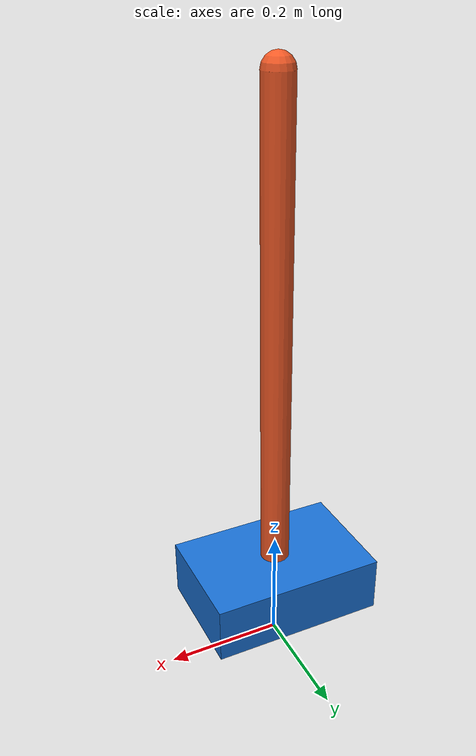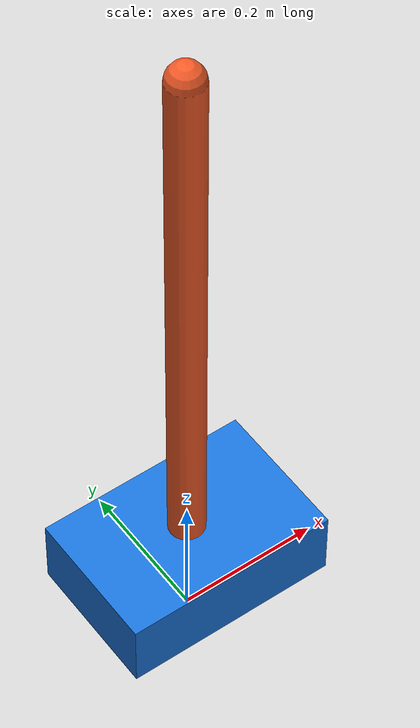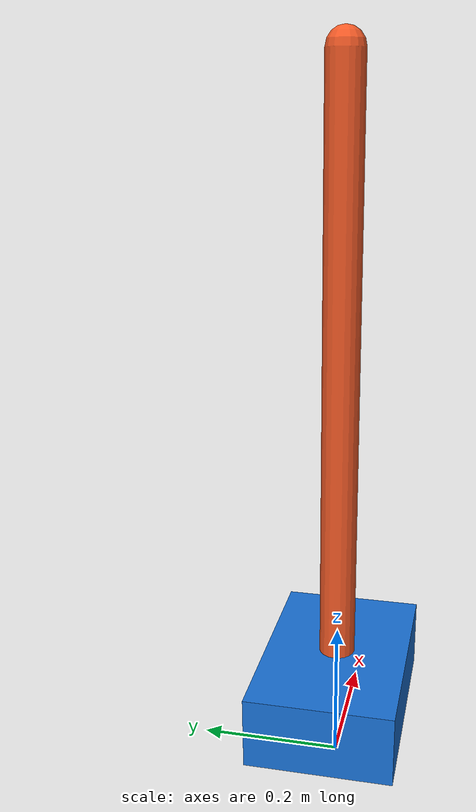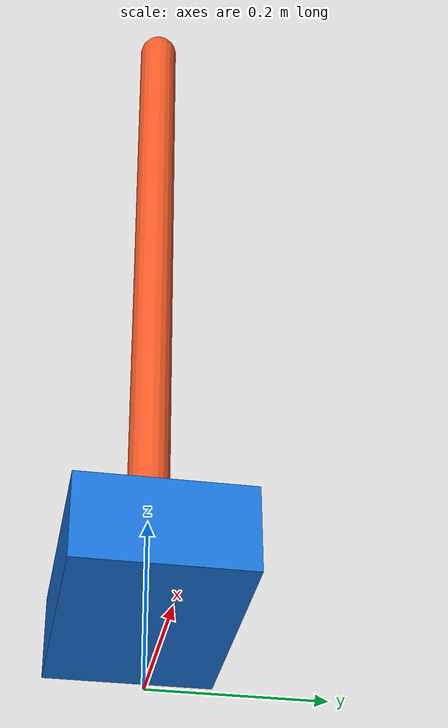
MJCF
<mujoco model="genelab_inverted_pendulum">
  <option timestep="0.005" gravity="0 0 -9.81" integrator="implicitfast"/>
  <default>
    <joint armature="0" damping="0"/>
    <geom contype="0" conaffinity="0"/>
  </default>
  <worldbody>
    <body name="cart" pos="0 0 0.12">
      <joint name="cart_slide" type="slide" axis="1 0 0" range="-3.0 3.0" damping="0.05"/>
      <geom name="cart_box" type="box" size="0.15 0.10 0.05" mass="1.0"
            rgba="0.10 0.45 0.85 1" contype="2" conaffinity="2"/>
      <body name="pole" pos="0 0 0.05">
        <joint name="pole_hinge" type="hinge" axis="0 1 0" range="-1.2 1.2" damping="0.002"/>
        <geom name="pole_capsule" type="capsule" fromto="0 0 0 0 0 0.80" size="0.025"
              mass="0.1" rgba="0.95 0.35 0.15 1" contype="4" conaffinity="4"/>
      </body>
    </body>
  </worldbody>
  <actuator>
    <motor name="cart_force" joint="cart_slide" gear="1"/>
  </actuator>
</mujoco>
